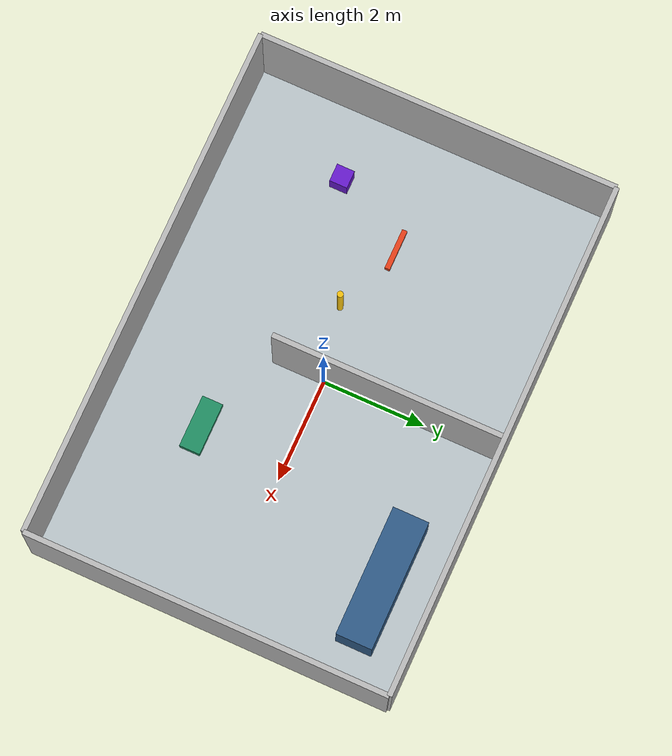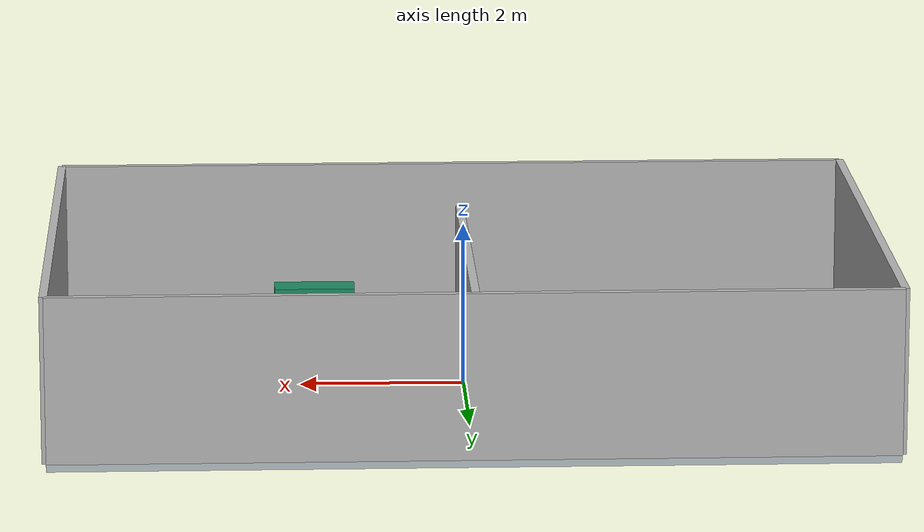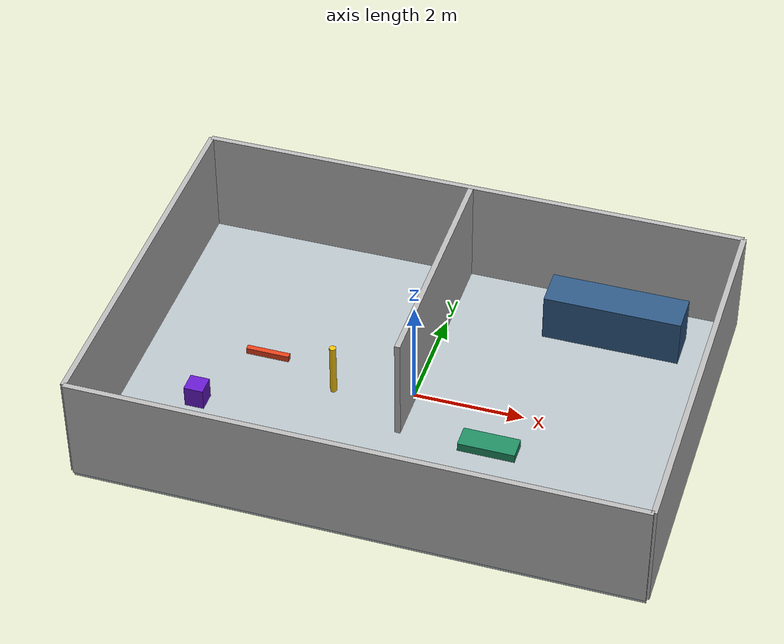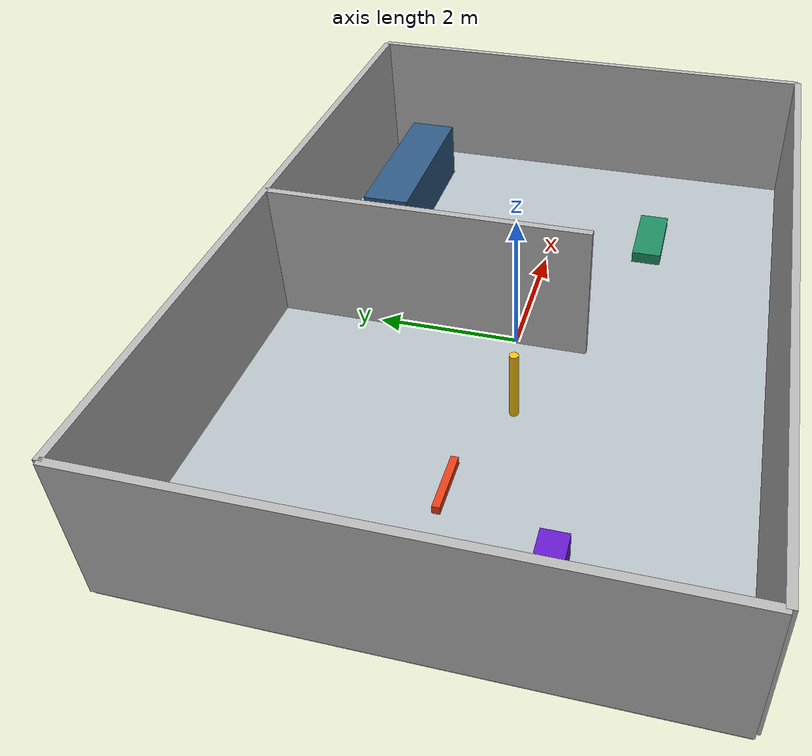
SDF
<?xml version="1.0"?>
<sdf version="1.10">
  <world name="cleanroom">
    <!-- A 2 ms integration step resolves the 50 mm wheels and the arm's
         position loops without granting the model instantaneous motion. -->
    <physics name="lekiwi_physics" type="ignored">
      <max_step_size>0.002</max_step_size>
      <real_time_factor>1.0</real_time_factor>
    </physics>
    <plugin filename="gz-sim-physics-system" name="gz::sim::systems::Physics"/>
    <plugin filename="gz-sim-user-commands-system" name="gz::sim::systems::UserCommands"/>
    <plugin filename="gz-sim-scene-broadcaster-system" name="gz::sim::systems::SceneBroadcaster"/>
    <plugin filename="gz-sim-sensors-system" name="gz::sim::systems::Sensors"><render_engine>ogre2</render_engine></plugin>
    <scene><ambient>0.7 0.7 0.7 1</ambient><background>0.9 0.9 0.9 1</background></scene>
    <light name="sun" type="directional"><pose>0 0 10 0 0 0</pose><diffuse>0.9 0.9 0.9 1</diffuse><direction>-0.4 0.2 -1</direction></light>
    <model name="floor"><static>true</static><pose>0 0 -0.05 0 0 0</pose><link name="link"><collision name="collision"><geometry><box><size>10 7 0.1</size></box></geometry><surface><friction><ode><mu>1.0</mu><mu2>1.0</mu2></ode></friction></surface></collision><visual name="visual"><geometry><box><size>10 7 0.1</size></box></geometry><material><diffuse>0.72 0.76 0.78 1</diffuse></material></visual></link></model>

    <model name="walls"><static>true</static><link name="link">
      <collision name="north"><pose>0 3.5 1 0 0 0</pose><geometry><box><size>10 0.1 2</size></box></geometry></collision>
      <collision name="south"><pose>0 -3.5 1 0 0 0</pose><geometry><box><size>10 0.1 2</size></box></geometry></collision>
      <collision name="east"><pose>5 0 1 0 0 0</pose><geometry><box><size>0.1 7 2</size></box></geometry></collision>
      <collision name="west"><pose>-5 0 1 0 0 0</pose><geometry><box><size>0.1 7 2</size></box></geometry></collision>
      <collision name="divider"><pose>0 1.25 1 0 0 0</pose><geometry><box><size>0.1 4.5 2</size></box></geometry></collision>
      <!-- SDF requires collision and visual names to be unique within a link. -->
      <visual name="visual_north"><pose>0 3.5 1 0 0 0</pose><geometry><box><size>10 0.1 2</size></box></geometry></visual>
      <visual name="visual_south"><pose>0 -3.5 1 0 0 0</pose><geometry><box><size>10 0.1 2</size></box></geometry></visual>
      <visual name="visual_east"><pose>5 0 1 0 0 0</pose><geometry><box><size>0.1 7 2</size></box></geometry></visual>
      <visual name="visual_west"><pose>-5 0 1 0 0 0</pose><geometry><box><size>0.1 7 2</size></box></geometry></visual>
      <visual name="visual_divider"><pose>0 1.25 1 0 0 0</pose><geometry><box><size>0.1 4.5 2</size></box></geometry></visual>
    </link></model>

    <model name="workbench"><static>true</static><pose>3 2.5 0.45 0 0 0</pose><link name="link"><collision name="collision"><geometry><box><size>2.5 0.7 0.9</size></box></geometry></collision><visual name="visual"><geometry><box><size>2.5 0.7 0.9</size></box></geometry><material><diffuse>0.18 0.35 0.52 1</diffuse></material></visual></link></model>
    <model name="test_low_curb"><static>true</static><pose>-2.8 0.2 0.06 0 0 0</pose><link name="link"><collision name="collision"><geometry><box><size>0.8 0.10 0.12</size></box></geometry></collision><visual name="visual"><geometry><box><size>0.8 0.10 0.12</size></box></geometry><material><diffuse>0.9 0.25 0.1 1</diffuse></material></visual></link></model>
    <model name="test_side_post"><static>true</static><pose>-1.4 -0.3 0.5 0 0 0</pose><link name="link"><collision name="collision"><geometry><cylinder><radius>0.06</radius><length>1.0</length></cylinder></geometry></collision><visual name="visual"><geometry><cylinder><radius>0.06</radius><length>1.0</length></cylinder></geometry><material><diffuse>0.95 0.75 0.05 1</diffuse></material></visual></link></model>
    <model name="test_rear_block"><static>true</static><pose>-3.6 -1.25 0.2 0 0 0</pose><link name="link"><collision name="collision"><geometry><box><size>0.35 0.35 0.4</size></box></geometry></collision><visual name="visual"><geometry><box><size>0.35 0.35 0.4</size></box></geometry><material><diffuse>0.4 0.1 0.8 1</diffuse></material></visual></link></model>
    <model name="test_overhang"><static>true</static><pose>1.8 -1.6 0.78 0 0 0</pose><link name="link"><collision name="collision"><geometry><box><size>1.0 0.4 0.16</size></box></geometry></collision><visual name="visual"><geometry><box><size>1.0 0.4 0.16</size></box></geometry><material><diffuse>0.12 0.55 0.38 1</diffuse></material></visual></link></model>
  </world>
</sdf>
